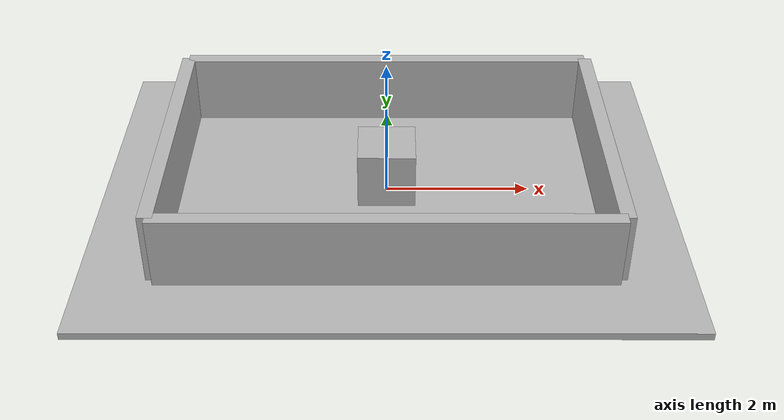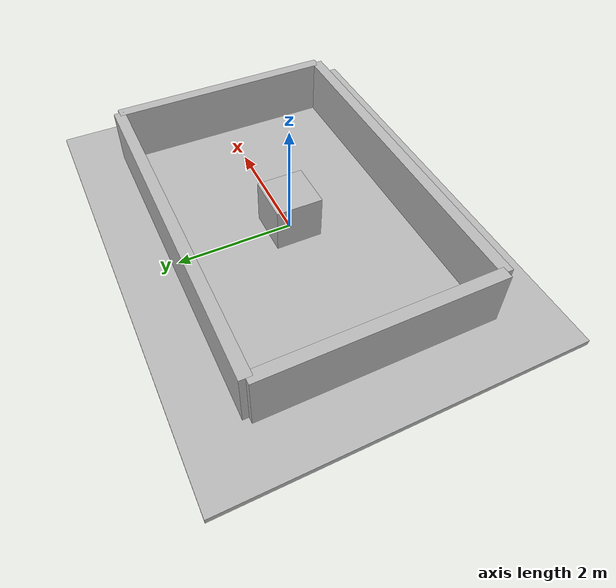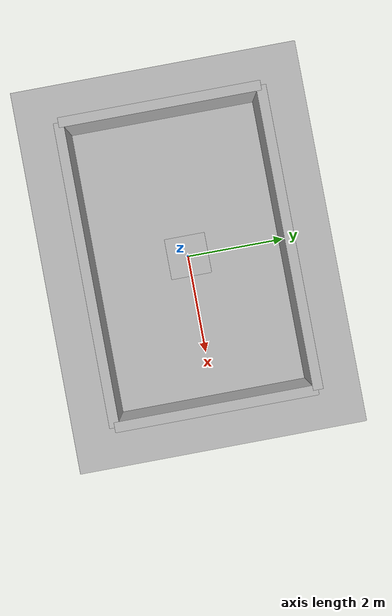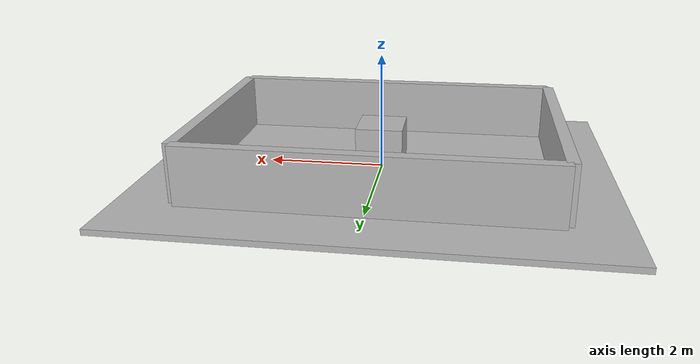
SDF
<?xml version="1.0"?>
<sdf version="1.9">
  <world name="wall_room">
    <physics name="physics" type="ignored">
      <max_step_size>0.001</max_step_size>
      <real_time_factor>1.0</real_time_factor>
    </physics>
    <gravity>0 0 -9.8</gravity>
    <plugin filename="gz-sim-physics-system" name="gz::sim::systems::Physics"/>
    <plugin filename="gz-sim-user-commands-system" name="gz::sim::systems::UserCommands"/>
    <plugin filename="gz-sim-scene-broadcaster-system" name="gz::sim::systems::SceneBroadcaster"/>
    <plugin filename="gz-sim-sensors-system" name="gz::sim::systems::Sensors">
      <render_engine>ogre2</render_engine>
    </plugin>
    <plugin filename="gz-sim-imu-system" name="gz::sim::systems::Imu"/>
    <light name="sun" type="directional">
      <pose>0 0 10 0 0 0</pose><direction>-0.5 0.1 -0.9</direction>
      <diffuse>0.8 0.8 0.8 1</diffuse><specular>0.2 0.2 0.2 1</specular>
    </light>
    <model name="floor">
      <static>true</static>
      <pose>0 0 -0.05 0 0 0</pose>
      <link name="body">
        <collision name="collision"><geometry><box><size>8 6 0.1</size></box></geometry></collision>
        <visual name="visual"><geometry><box><size>8 6 0.1</size></box></geometry></visual>
      </link>
    </model>
    <model name="south_wall">
      <static>true</static>
      <pose>0 -2 0.5 0 0 0</pose>
      <link name="body">
        <collision name="collision"><geometry><box><size>6 0.2 1</size></box></geometry></collision>
        <visual name="visual"><geometry><box><size>6 0.2 1</size></box></geometry></visual>
      </link>
    </model>
    <model name="north_wall">
      <static>true</static>
      <pose>0 2 0.5 0 0 0</pose>
      <link name="body">
        <collision name="collision"><geometry><box><size>6 0.2 1</size></box></geometry></collision>
        <visual name="visual"><geometry><box><size>6 0.2 1</size></box></geometry></visual>
      </link>
    </model>
    <model name="east_wall">
      <static>true</static>
      <pose>3 0 0.5 0 0 0</pose>
      <link name="body">
        <collision name="collision"><geometry><box><size>0.2 4 1</size></box></geometry></collision>
        <visual name="visual"><geometry><box><size>0.2 4 1</size></box></geometry></visual>
      </link>
    </model>
    <model name="west_wall">
      <static>true</static>
      <pose>-3 0 0.5 0 0 0</pose>
      <link name="body">
        <collision name="collision"><geometry><box><size>0.2 4 1</size></box></geometry></collision>
        <visual name="visual"><geometry><box><size>0.2 4 1</size></box></geometry></visual>
      </link>
    </model>
    <model name="obstacle">
      <static>true</static>
      <pose>0 0 0.4 0 0 0</pose>
      <link name="body">
        <collision name="collision"><geometry><box><size>0.8 0.8 0.8</size></box></geometry></collision>
        <visual name="visual"><geometry><box><size>0.8 0.8 0.8</size></box></geometry></visual>
      </link>
    </model>
  </world>
</sdf>
